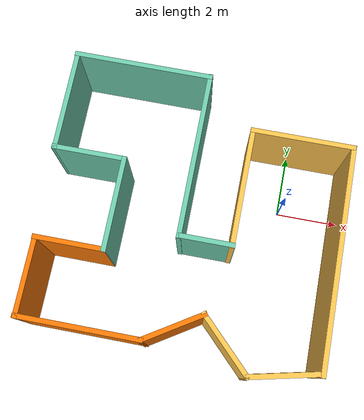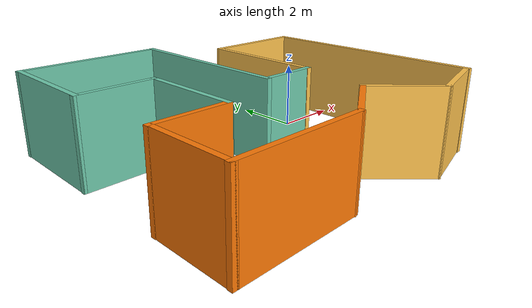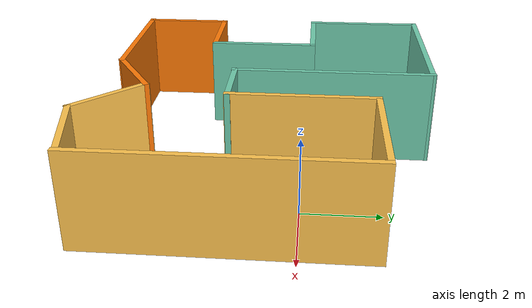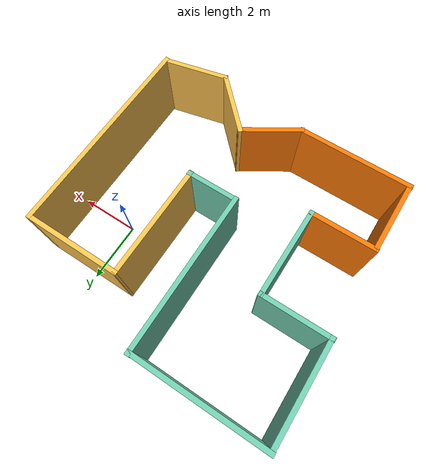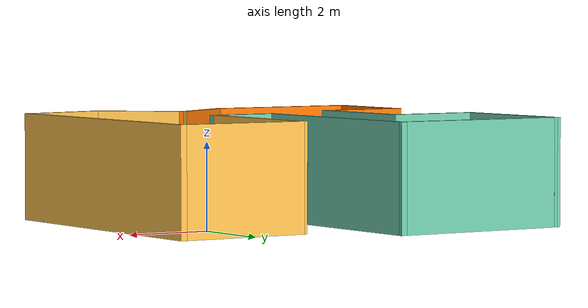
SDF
<?xml version='1.0'?>
<sdf version='1.6'>
  <model name='mansion'>
    <pose frame=''>-2.73914 -1.06912 0 0 -0 0</pose>
    <link name='Wall_50'>
      <collision name='Wall_50_Collision'>
        <geometry>
          <box>
            <size>7 0.15 2.5</size>
          </box>
        </geometry>
        <pose frame=''>0 0 1.25 0 -0 0</pose>
      </collision>
      <visual name='Wall_50_Visual'>
        <pose frame=''>0 0 1.25 0 -0 0</pose>
        <geometry>
          <box>
            <size>7 0.15 2.5</size>
          </box>
        </geometry>
        <material>
          <script>
            <uri>file://media/materials/scripts/gazebo.material</uri>
            <name>Gazebo/Grey</name>
          </script>
          <ambient>1 0.764706 0.305882 1</ambient>
        </material>
        <meta>
          <layer>0</layer>
        </meta>
      </visual>
      <pose frame=''>4.50754 -0.528645 0 0 -0 1.5708</pose>
    </link>
    <link name='Wall_52'>
      <collision name='Wall_52_Collision'>
        <geometry>
          <box>
            <size>3.25 0.15 2.5</size>
          </box>
        </geometry>
        <pose frame=''>0 0 1.25 0 -0 0</pose>
      </collision>
      <visual name='Wall_52_Visual'>
        <pose frame=''>0 0 1.25 0 -0 0</pose>
        <geometry>
          <box>
            <size>3.25 0.15 2.5</size>
          </box>
        </geometry>
        <material>
          <script>
            <uri>file://media/materials/scripts/gazebo.material</uri>
            <name>Gazebo/Grey</name>
          </script>
          <ambient>1 0.764706 0.305882 1</ambient>
        </material>
        <meta>
          <layer>0</layer>
        </meta>
      </visual>
      <pose frame=''>2.94233 2.89635 0 0 -0 3.14159</pose>
    </link>
    <link name='Wall_53'>
      <collision name='Wall_53_Collision'>
        <geometry>
          <box>
            <size>3.83651 0.15 2.5</size>
          </box>
        </geometry>
        <pose frame=''>0 0 1.25 0 -0 0</pose>
      </collision>
      <visual name='Wall_53_Visual'>
        <pose frame=''>0 0 1.25 0 -0 0</pose>
        <geometry>
          <box>
            <size>3.83651 0.15 2.5</size>
          </box>
        </geometry>
        <material>
          <script>
            <uri>file://media/materials/scripts/gazebo.material</uri>
            <name>Gazebo/Grey</name>
          </script>
          <ambient>1 0.764706 0.305882 1</ambient>
        </material>
        <meta>
          <layer>0</layer>
        </meta>
      </visual>
      <pose frame=''>1.38472 1.05311 0 0 0 -1.57492</pose>
    </link>
    <link name='Wall_54'>
      <collision name='Wall_54_Collision'>
        <geometry>
          <box>
            <size>1.75 0.15 2.5</size>
          </box>
        </geometry>
        <pose frame=''>0 0 1.25 0 -0 0</pose>
      </collision>
      <visual name='Wall_54_Visual'>
        <pose frame=''>0 0 1.25 0 -0 0</pose>
        <geometry>
          <box>
            <size>1.75 0.15 2.5</size>
          </box>
        </geometry>
        <material>
          <script>
            <uri>file://media/materials/scripts/gazebo.material</uri>
            <name>Gazebo/Grey</name>
          </script>
          <ambient>0.435294 0.796078 0.67451 1</ambient>
        </material>
        <meta>
          <layer>0</layer>
        </meta>
      </visual>
      <pose frame=''>0.59233 -0.774918 0 0 -0 3.14159</pose>
    </link>
    <link name='Wall_55'>
      <collision name='Wall_55_Collision'>
        <geometry>
          <box>
            <size>5.35736 0.15 2.5</size>
          </box>
        </geometry>
        <pose frame=''>0 0 1.25 0 -0 0</pose>
      </collision>
      <visual name='Wall_55_Visual'>
        <pose frame=''>0 0 1.25 0 -0 0</pose>
        <geometry>
          <box>
            <size>5.35736 0.15 2.5</size>
          </box>
        </geometry>
        <material>
          <script>
            <uri>file://media/materials/scripts/gazebo.material</uri>
            <name>Gazebo/Grey</name>
          </script>
          <ambient>0.435294 0.796078 0.67451 1</ambient>
        </material>
        <meta>
          <layer>0</layer>
        </meta>
      </visual>
      <pose frame=''>-0.222879 1.81355 0 0 -0 1.5708</pose>
    </link>
    <link name='Wall_56'>
      <collision name='Wall_56_Collision'>
        <geometry>
          <box>
            <size>4.43442 0.15 2.5</size>
          </box>
        </geometry>
        <pose frame=''>0 0 1.25 0 -0 0</pose>
      </collision>
      <visual name='Wall_56_Visual'>
        <pose frame=''>0 0 1.25 0 -0 0</pose>
        <geometry>
          <box>
            <size>4.43442 0.15 2.5</size>
          </box>
        </geometry>
        <material>
          <script>
            <uri>file://media/materials/scripts/gazebo.material</uri>
            <name>Gazebo/Grey</name>
          </script>
          <ambient>0.435294 0.796078 0.67451 1</ambient>
        </material>
        <meta>
          <layer>0</layer>
        </meta>
      </visual>
      <pose frame=''>-2.36508 4.40963 0 0 -0 3.13804</pose>
    </link>
    <link name='Wall_57'>
      <collision name='Wall_57_Collision'>
        <geometry>
          <box>
            <size>3.31654 0.15 2.5</size>
          </box>
        </geometry>
        <pose frame=''>0 0 1.25 0 -0 0</pose>
      </collision>
      <visual name='Wall_57_Visual'>
        <pose frame=''>0 0 1.25 0 -0 0</pose>
        <geometry>
          <box>
            <size>3.31654 0.15 2.5</size>
          </box>
        </geometry>
        <material>
          <script>
            <uri>file://media/materials/scripts/gazebo.material</uri>
            <name>Gazebo/Grey</name>
          </script>
          <ambient>0.435294 0.796078 0.67451 1</ambient>
        </material>
        <meta>
          <layer>0</layer>
        </meta>
      </visual>
      <pose frame=''>-4.48446 2.83398 0 0 0 -1.56599</pose>
    </link>
    <link name='Wall_58'>
      <collision name='Wall_58_Collision'>
        <geometry>
          <box>
            <size>2.31938 0.15 2.5</size>
          </box>
        </geometry>
        <pose frame=''>0 0 1.25 0 -0 0</pose>
      </collision>
      <visual name='Wall_58_Visual'>
        <pose frame=''>0 0 1.25 0 -0 0</pose>
        <geometry>
          <box>
            <size>2.31938 0.15 2.5</size>
          </box>
        </geometry>
        <material>
          <script>
            <uri>file://media/materials/scripts/gazebo.material</uri>
            <name>Gazebo/Grey</name>
          </script>
          <ambient>0.435294 0.796078 0.67451 1</ambient>
        </material>
        <meta>
          <layer>0</layer>
        </meta>
      </visual>
      <pose frame=''>-3.40737 1.25073 0 0 -0 0</pose>
    </link>
    <link name='Wall_59'>
      <collision name='Wall_59_Collision'>
        <geometry>
          <box>
            <size>3 0.15 2.5</size>
          </box>
        </geometry>
        <pose frame=''>0 0 1.25 0 -0 0</pose>
      </collision>
      <visual name='Wall_59_Visual'>
        <pose frame=''>0 0 1.25 0 -0 0</pose>
        <geometry>
          <box>
            <size>3 0.15 2.5</size>
          </box>
        </geometry>
        <material>
          <script>
            <uri>file://media/materials/scripts/gazebo.material</uri>
            <name>Gazebo/Grey</name>
          </script>
          <ambient>0.435294 0.796078 0.67451 1</ambient>
        </material>
        <meta>
          <layer>0</layer>
        </meta>
      </visual>
      <pose frame=''>-2.30747 -0.174271 0 0 0 -1.5708</pose>
    </link>
    <link name='Wall_60'>
      <collision name='Wall_60_Collision'>
        <geometry>
          <box>
            <size>2.21292 0.15 2.5</size>
          </box>
        </geometry>
        <pose frame=''>0 0 1.25 0 -0 0</pose>
      </collision>
      <visual name='Wall_60_Visual'>
        <pose frame=''>0 0 1.25 0 -0 0</pose>
        <geometry>
          <box>
            <size>2.21292 0.15 2.5</size>
          </box>
        </geometry>
        <material>
          <script>
            <uri>file://media/materials/scripts/gazebo.material</uri>
            <name>Gazebo/Grey</name>
          </script>
          <ambient>0.996078 0.47451 0.0196078 1</ambient>
        </material>
        <meta>
          <layer>0</layer>
        </meta>
      </visual>
      <pose frame=''>-3.35414 -1.59927 0 0 -0 3.14159</pose>
    </link>
    <link name='Wall_61'>
      <collision name='Wall_61_Collision'>
        <geometry>
          <box>
            <size>2.5 0.15 2.5</size>
          </box>
        </geometry>
        <pose frame=''>0 0 1.25 0 -0 0</pose>
      </collision>
      <visual name='Wall_61_Visual'>
        <pose frame=''>0 0 1.25 0 -0 0</pose>
        <geometry>
          <box>
            <size>2.5 0.15 2.5</size>
          </box>
        </geometry>
        <material>
          <script>
            <uri>file://media/materials/scripts/gazebo.material</uri>
            <name>Gazebo/Grey</name>
          </script>
          <ambient>0.996078 0.47451 0.0196078 1</ambient>
        </material>
        <meta>
          <layer>0</layer>
        </meta>
      </visual>
      <pose frame=''>-4.37039 -2.77427 0 0 0 -1.5708</pose>
    </link>
    <link name='Wall_62'>
      <collision name='Wall_62_Collision'>
        <geometry>
          <box>
            <size>3.82793 0.15 2.5</size>
          </box>
        </geometry>
        <pose frame=''>0 0 1.25 0 -0 0</pose>
      </collision>
      <visual name='Wall_62_Visual'>
        <pose frame=''>0 0 1.25 0 -0 0</pose>
        <geometry>
          <box>
            <size>3.82793 0.15 2.5</size>
          </box>
        </geometry>
        <material>
          <script>
            <uri>file://media/materials/scripts/gazebo.material</uri>
            <name>Gazebo/Grey</name>
          </script>
          <ambient>0.996078 0.47451 0.0196078 1</ambient>
        </material>
        <meta>
          <layer>0</layer>
        </meta>
      </visual>
      <pose frame=''>-2.54664 -3.94927 0 0 -0 0</pose>
    </link>
    <link name='Wall_63'>
      <collision name='Wall_63_Collision'>
        <geometry>
          <box>
            <size>2.11281 0.15 2.5</size>
          </box>
        </geometry>
        <pose frame=''>0 0 1.25 0 -0 0</pose>
      </collision>
      <visual name='Wall_63_Visual'>
        <pose frame=''>0 0 1.25 0 -0 0</pose>
        <geometry>
          <box>
            <size>2.11281 0.15 2.5</size>
          </box>
        </geometry>
        <material>
          <script>
            <uri>file://media/materials/scripts/gazebo.material</uri>
            <name>Gazebo/Grey</name>
          </script>
          <ambient>0.996078 0.47451 0.0196078 1</ambient>
        </material>
        <meta>
          <layer>0</layer>
        </meta>
      </visual>
      <pose frame=''>0.122242 -3.42543 0 0 -0 0.563042</pose>
    </link>
    <link name='Wall_64'>
      <collision name='Wall_64_Collision'>
        <geometry>
          <box>
            <size>2.25 0.15 2.5</size>
          </box>
        </geometry>
        <pose frame=''>0 0 1.25 0 -0 0</pose>
      </collision>
      <visual name='Wall_64_Visual'>
        <pose frame=''>0 0 1.25 0 -0 0</pose>
        <geometry>
          <box>
            <size>2.25 0.15 2.5</size>
          </box>
        </geometry>
        <material>
          <script>
            <uri>file://media/materials/scripts/gazebo.material</uri>
            <name>Gazebo/Grey</name>
          </script>
          <ambient>1 0.764706 0.305882 1</ambient>
        </material>
        <meta>
          <layer>0</layer>
        </meta>
      </visual>
      <pose frame=''>1.67713 -3.64406 0 0 0 -0.785398</pose>
    </link>
    <link name='Wall_65'>
      <collision name='Wall_65_Collision'>
        <geometry>
          <box>
            <size>2.12413 0.15 2.5</size>
          </box>
        </geometry>
        <pose frame=''>0 0 1.25 0 -0 0</pose>
      </collision>
      <visual name='Wall_65_Visual'>
        <pose frame=''>0 0 1.25 0 -0 0</pose>
        <geometry>
          <box>
            <size>2.12413 0.15 2.5</size>
          </box>
        </geometry>
        <material>
          <script>
            <uri>file://media/materials/scripts/gazebo.material</uri>
            <name>Gazebo/Grey</name>
          </script>
          <ambient>1 0.764706 0.305882 1</ambient>
        </material>
        <meta>
          <layer>0</layer>
        </meta>
      </visual>
      <pose frame=''>3.39963 -4.1679 0 0 -0 0.223343</pose>
    </link>
    <static>1</static>
  </model>
</sdf>
